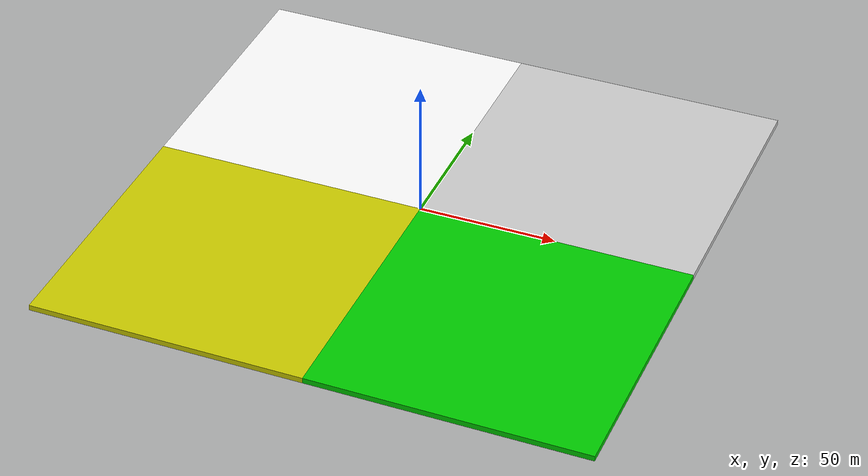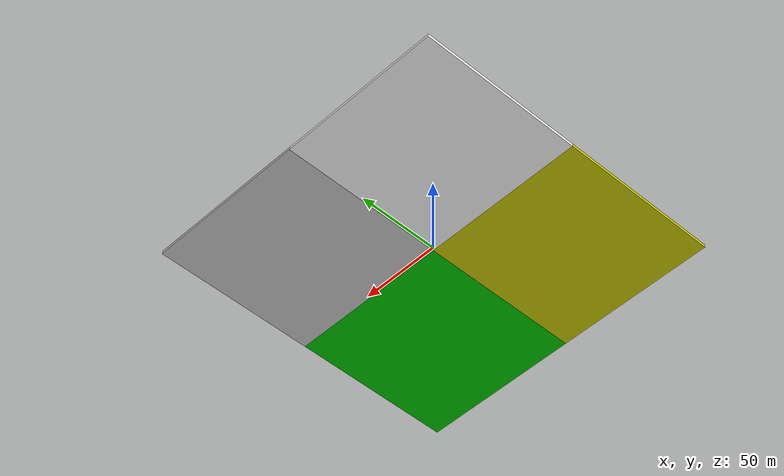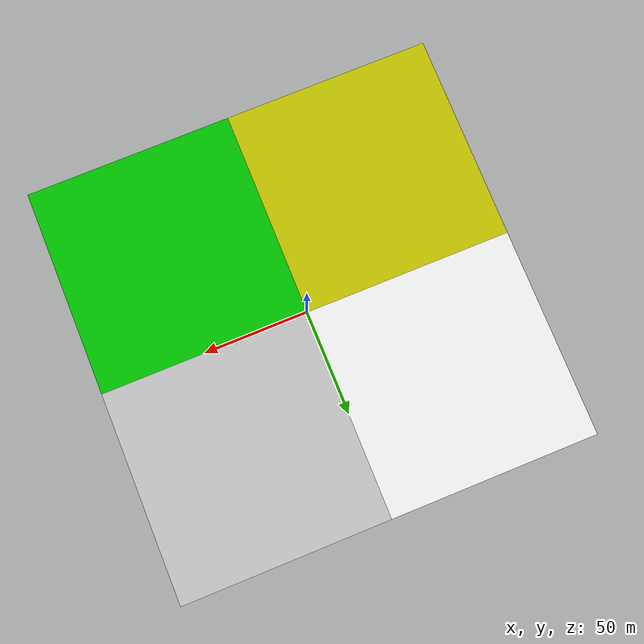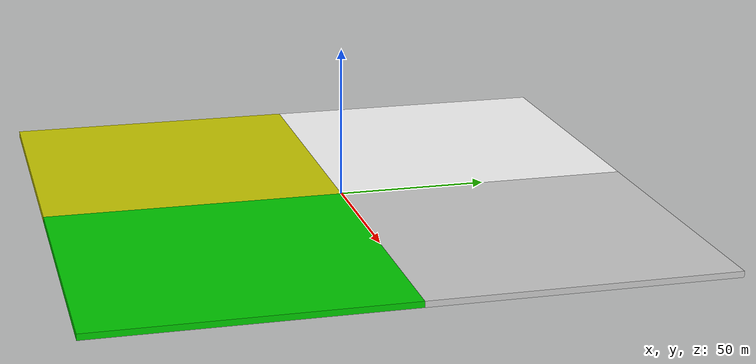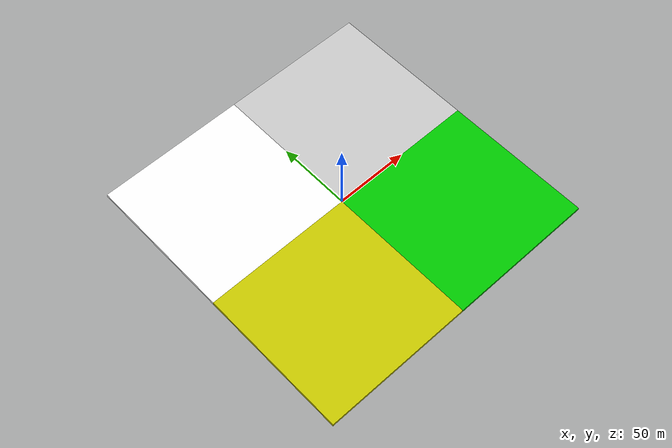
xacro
<?xml version="1.0" encoding="utf-8"?>
<robot name="ground_plane" xmlns:xacro="http://www.ros.org/wiki/xacro">
    <gazebo>
        <static>true</static>
    </gazebo>

    <link name="ground_plane_link">
        <inertial>
            <origin rpy="0 0 0" xyz="0 0 0"/>
            <mass value="1"/>
            <inertia ixx="1" ixy="0" ixz="0" iyy="1" iyz="0" izz="1"/>
        </inertial>
        <visual>
            <origin rpy="0 0 0" xyz="50 50 -1"/>
            <geometry>
                <box size="100 100 2"/>
            </geometry>
            <material name="grey">
                <color rgba="0.8 0.8 0.8 1.0"/>
            </material>
        </visual>
        <collision>
            <origin rpy="0 0 0" xyz="50 50 -1"/>
            <geometry>
                <box size="100 100 2"/>
            </geometry>
        </collision>
    </link>
    <joint name="LF_to_RF" type="revolute">
        <parent link="ground_plane_link"/>
        <child link="ground_plane_link_RF"/>
        <origin rpy="0 0 0" xyz="50 -50 0"/>
        <axis xyz="1 0 0"/>
        <limit effort="0.0" lower="0.0" upper="0.0" velocity="0.0"/>
        <dynamics damping="0.0" friction="0.0"/>
    </joint>
    <link name="ground_plane_link_RF">
        <inertial>
            <origin rpy="0 0 0" xyz="0 0 0"/>
            <mass value="1"/>
            <inertia ixx="1" ixy="0" ixz="0" iyy="1" iyz="0" izz="1"/>
        </inertial>
        <visual>
            <origin rpy="0 0 0" xyz="0 0 -1"/>
            <geometry>
                <box size="100 100 2"/>
            </geometry>
            <material name="grey">
                <color rgba="0.0 0.8 0.0 1.0"/>
            </material>
        </visual>
        <collision>
            <origin rpy="0 0 0" xyz="0 0 -1"/>
            <geometry>
                <box size="100 100 2"/>
            </geometry>
        </collision>
    </link>
    <joint name="RF_to_RH" type="revolute">
        <parent link="ground_plane_link_RF"/>
        <child link="ground_plane_link_RH"/>
        <origin rpy="0 0 0" xyz="-100 0 0"/>
        <axis xyz="1 0 0"/>
        <limit effort="0.0" lower="0.0" upper="0.0" velocity="0.0"/>
        <dynamics damping="0.0" friction="0.0"/>
    </joint>
    <link name="ground_plane_link_RH">
        <inertial>
            <origin rpy="0 0 0" xyz="0 0 0"/>
            <mass value="1"/>
            <inertia ixx="1" ixy="0" ixz="0" iyy="1" iyz="0" izz="1"/>
        </inertial>
        <visual>
            <origin rpy="0 0 0" xyz="0 0 -1"/>
            <geometry>
                <box size="100 100 2"/>
            </geometry>
            <material name="gold">
                <color rgba="0.8 0.8 0.0 1.0"/>
            </material>
        </visual>
        <collision>
            <origin rpy="0 0 0" xyz="0 0 -1"/>
            <geometry>
                <box size="100 100 2"/>
            </geometry>
        </collision>
    </link>
    <joint name="RH_to_LH" type="revolute">
        <parent link="ground_plane_link_RH"/>
        <child link="ground_plane_link_LH"/>
        <origin rpy="0 0 0" xyz="0 100 0"/>
        <axis xyz="1 0 0"/>
        <limit effort="0.0" lower="0.0" upper="0.0" velocity="0.0"/>
        <dynamics damping="0.0" friction="0.0"/>
    </joint>
    <link name="ground_plane_link_LH">
        <inertial>
            <origin rpy="0 0 0" xyz="0 100 0"/>
            <mass value="1"/>
            <inertia ixx="1" ixy="0" ixz="0" iyy="1" iyz="0" izz="1"/>
        </inertial>
        <visual>
            <origin rpy="0 0 0" xyz="0 0 -1"/>
            <geometry>
                <box size="100 100 2"/>
            </geometry>
            <material name="white">
                <color rgba="1.0 1.0 1.0 1.0"/>
            </material>
        </visual>
        <collision>
            <origin rpy="0 0 0" xyz="0 0 -1"/>
            <geometry>
                <box size="100 100 2"/>
            </geometry>
        </collision>
    </link>

    <gazebo reference="ground_plane_link">
        <material>Gazebo/Grey</material>
            <kp>1e6</kp>
            <kd>1e2</kd>
    </gazebo>

    <gazebo reference="LF_to_RF">
        <preserve_fixed_joint>true</preserve_fixed_joint>
    </gazebo>

    <gazebo reference="ground_plane_link_RF">
        <material>Gazebo/Grass</material>
        <kp>5000</kp>
        <kd>100</kd>
    </gazebo>

    <gazebo reference="ground_plane_link_RH">
        <material>Gazebo/Gold</material>
        <kp>2000</kp>
        <kd>100</kd>
    </gazebo>

    <gazebo reference="ground_plane_link_LH">
        <material>Gazebo/White</material>
        <kp>10000</kp>
        <kd>200</kd>
    </gazebo>

</robot>
